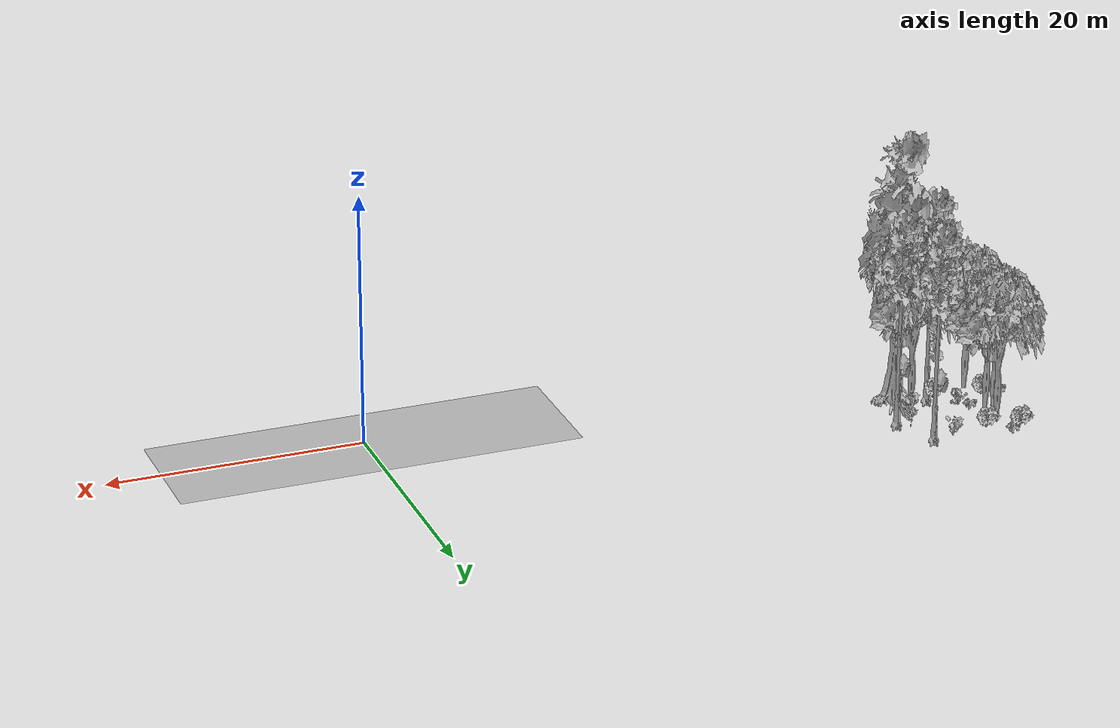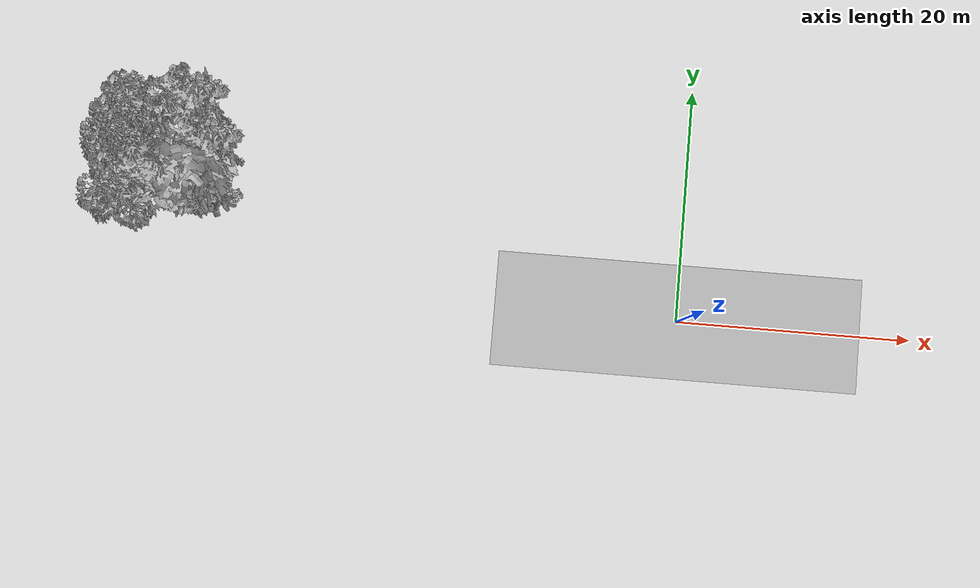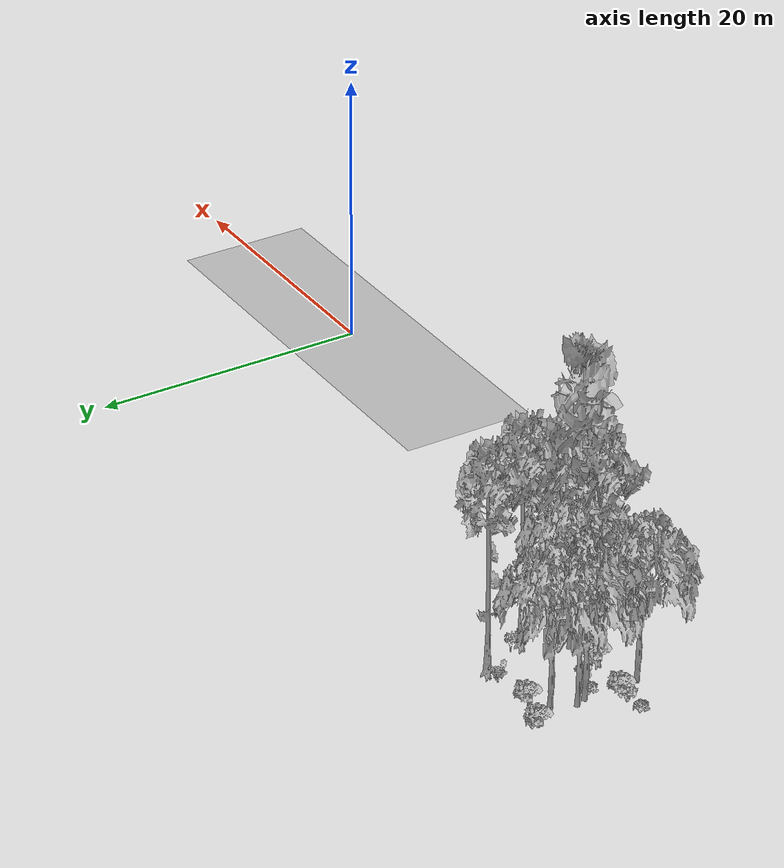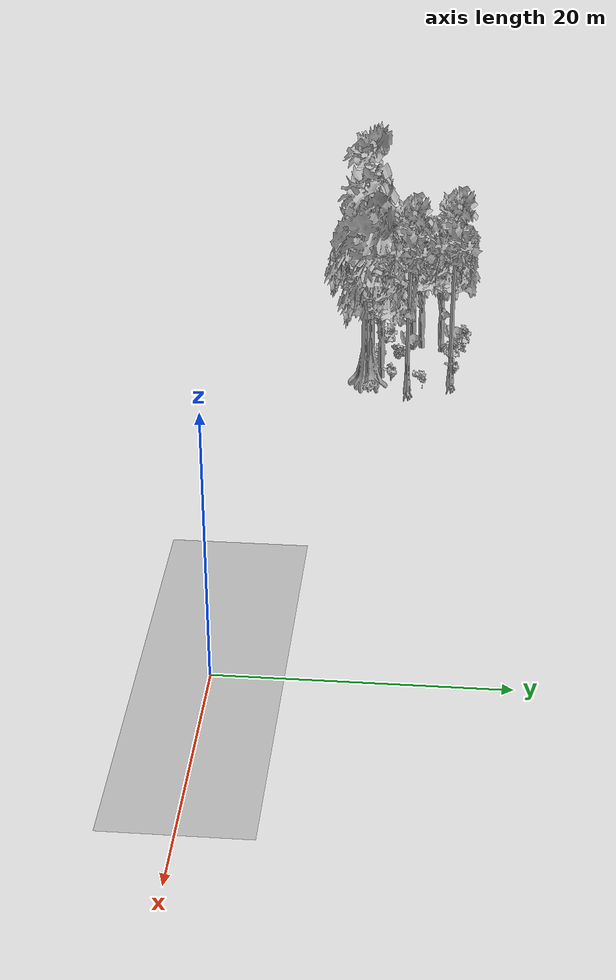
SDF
<sdf version="1.7">
 <world name="default">
  <model name="ground_plane">
   <static>1</static>
   <link name="link">
    <collision name="collision">
     <geometry><plane><normal>0 0 1</normal><size>100 100</size></plane></geometry>
     <surface><contact><ode><min_depth>0.01</min_depth><max_vel>0</max_vel></ode></contact></surface>
    </collision>
    <visual name="grass">
     <cast_shadows>0</cast_shadows>
     <geometry>
      <mesh>
       <scale>0.5814285714285714 0.18142857142857144 0.1</scale>
       <uri>file://grass_plane/meshes/grass_plane.dae</uri>
      </mesh>
     </geometry>
    </visual>
   </link>
  </model>
  <model name="Tree 52">
   <static>1</static>
   <pose>-46.08947265145504 13.245423968762662 0 1.57079 -0 0</pose>
   <link name="link">
    <collision name="collision">
     <geometry><mesh><scale>3.5 5 3.5</scale><uri>model://tree_2/meshes/tree_2.obj</uri></mesh></geometry>
    </collision>
    <visual name="visual">
     <geometry><mesh><scale>3.5 5 3.5</scale><uri>model://tree_2/meshes/tree_2.obj</uri></mesh></geometry>
    </visual>
   </link>
  </model>
  <model name="Tree 214">
   <static>1</static>
   <pose>-38.88065393081012 10.774691211876824 0 1.57079 -0 0</pose>
   <link name="link">
    <collision name="collision">
     <geometry><mesh><scale>3.5 5 3.5</scale><uri>model://tree_9/meshes/tree_9.obj</uri></mesh></geometry>
    </collision>
    <visual name="visual">
     <geometry><mesh><scale>3.5 5 3.5</scale><uri>model://tree_9/meshes/tree_9.obj</uri></mesh></geometry>
    </visual>
   </link>
  </model>
  <model name="Tree 234">
   <static>1</static>
   <pose>-46.62712365443124 11.564407777449041 0 1.57079 -0 0</pose>
   <link name="link">
    <collision name="collision">
     <geometry><mesh><scale>3.5 5 3.5</scale><uri>model://tree_2/meshes/tree_2.obj</uri></mesh></geometry>
    </collision>
    <visual name="visual">
     <geometry><mesh><scale>3.5 5 3.5</scale><uri>model://tree_2/meshes/tree_2.obj</uri></mesh></geometry>
    </visual>
   </link>
  </model>
  <model name="Tree 236">
   <static>1</static>
   <pose>-42.81697002062841 7.634112495179888 0 1.57079 -0 0</pose>
   <link name="link">
    <collision name="collision">
     <geometry><mesh><scale>3.5 5 3.5</scale><uri>model://tree_9/meshes/tree_9.obj</uri></mesh></geometry>
    </collision>
    <visual name="visual">
     <geometry><mesh><scale>3.5 5 3.5</scale><uri>model://tree_9/meshes/tree_9.obj</uri></mesh></geometry>
    </visual>
   </link>
  </model>
  <model name="Tree 310">
   <static>1</static>
   <pose>-40.192363926384175 7.449278251251609 0 1.57079 -0 0</pose>
   <link name="link">
    <collision name="collision">
     <geometry><mesh><scale>3.5 5 3.5</scale><uri>model://tree_4/meshes/tree_4.obj</uri></mesh></geometry>
    </collision>
    <visual name="visual">
     <geometry><mesh><scale>3.5 5 3.5</scale><uri>model://tree_4/meshes/tree_4.obj</uri></mesh></geometry>
    </visual>
   </link>
  </model>
  <model name="Tree 314">
   <static>1</static>
   <pose>-41.16809557386468 8.516258128596526 0 1.57079 -0 0</pose>
   <link name="link">
    <collision name="collision">
     <geometry><mesh><scale>3.5 5 3.5</scale><uri>model://tree_2/meshes/tree_2.obj</uri></mesh></geometry>
    </collision>
    <visual name="visual">
     <geometry><mesh><scale>3.5 5 3.5</scale><uri>model://tree_2/meshes/tree_2.obj</uri></mesh></geometry>
    </visual>
   </link>
  </model>
  <model name="Tree 325">
   <static>1</static>
   <pose>-46.37356224802871 6.976672934072884 0 1.57079 -0 0</pose>
   <link name="link">
    <collision name="collision">
     <geometry><mesh><scale>3.5 5 3.5</scale><uri>model://tree_2/meshes/tree_2.obj</uri></mesh></geometry>
    </collision>
    <visual name="visual">
     <geometry><mesh><scale>3.5 5 3.5</scale><uri>model://tree_2/meshes/tree_2.obj</uri></mesh></geometry>
    </visual>
   </link>
  </model>
  <model name="Tree 356">
   <static>1</static>
   <pose>-40.36227810251644 14.23106195304268 0 1.57079 -0 0</pose>
   <link name="link">
    <collision name="collision">
     <geometry><mesh><scale>3.5 5 3.5</scale><uri>model://tree_9/meshes/tree_9.obj</uri></mesh></geometry>
    </collision>
    <visual name="visual">
     <geometry><mesh><scale>3.5 5 3.5</scale><uri>model://tree_9/meshes/tree_9.obj</uri></mesh></geometry>
    </visual>
   </link>
  </model>
  <model name="Tree 390">
   <static>1</static>
   <pose>-46.32582929962931 10.836689802900423 0 1.57079 -0 0</pose>
   <link name="link">
    <collision name="collision">
     <geometry><mesh><scale>3.5 5 3.5</scale><uri>model://tree_2/meshes/tree_2.obj</uri></mesh></geometry>
    </collision>
    <visual name="visual">
     <geometry><mesh><scale>3.5 5 3.5</scale><uri>model://tree_2/meshes/tree_2.obj</uri></mesh></geometry>
    </visual>
   </link>
  </model>
  <model name="Bush 12">
   <static>1</static>
   <pose>-47.20260601626977 14.813986729203606 0 1.57079 -0 0</pose>
   <link name="link">
    <collision name="collision">
     <geometry><mesh><scale>2 2 2</scale><uri>model://bush_1/meshes/bush_1.obj</uri></mesh></geometry>
     <surface><contact><collide_without_contact>false</collide_without_contact></contact></surface>
    </collision>
    <visual name="visual">
     <geometry><mesh><scale>2 2 2</scale><uri>model://bush_1/meshes/bush_1.obj</uri></mesh></geometry>
    </visual>
   </link>
  </model>
  <model name="Bush 18">
   <static>1</static>
   <pose>-40.582393359893445 9.370725535602865 0 1.57079 -0 0</pose>
   <link name="link">
    <collision name="collision">
     <geometry><mesh><scale>2 2 2</scale><uri>model://bush_0/meshes/bush_0.obj</uri></mesh></geometry>
     <surface><contact><collide_without_contact>false</collide_without_contact></contact></surface>
    </collision>
    <visual name="visual">
     <geometry><mesh><scale>2 2 2</scale><uri>model://bush_0/meshes/bush_0.obj</uri></mesh></geometry>
    </visual>
   </link>
  </model>
  <model name="Bush 27">
   <static>1</static>
   <pose>-41.86894153987615 14.432781859617869 0 1.57079 -0 0</pose>
   <link name="link">
    <collision name="collision">
     <geometry><mesh><scale>2 2 2</scale><uri>model://bush_0/meshes/bush_0.obj</uri></mesh></geometry>
     <surface><contact><collide_without_contact>false</collide_without_contact></contact></surface>
    </collision>
    <visual name="visual">
     <geometry><mesh><scale>2 2 2</scale><uri>model://bush_0/meshes/bush_0.obj</uri></mesh></geometry>
    </visual>
   </link>
  </model>
  <model name="Bush 88">
   <static>1</static>
   <pose>-48.684814531987826 8.22994078586775 0 1.57079 -0 0</pose>
   <link name="link">
    <collision name="collision">
     <geometry><mesh><scale>2 2 2</scale><uri>model://bush_2/meshes/bush_2.obj</uri></mesh></geometry>
     <surface><contact><collide_without_contact>false</collide_without_contact></contact></surface>
    </collision>
    <visual name="visual">
     <geometry><mesh><scale>2 2 2</scale><uri>model://bush_2/meshes/bush_2.obj</uri></mesh></geometry>
    </visual>
   </link>
  </model>
  <model name="Bush 91">
   <static>1</static>
   <pose>-47.41237828912675 8.508440608296858 0 1.57079 -0 0</pose>
   <link name="link">
    <collision name="collision">
     <geometry><mesh><scale>2 2 2</scale><uri>model://bush_3/meshes/bush_3.obj</uri></mesh></geometry>
     <surface><contact><collide_without_contact>false</collide_without_contact></contact></surface>
    </collision>
    <visual name="visual">
     <geometry><mesh><scale>2 2 2</scale><uri>model://bush_3/meshes/bush_3.obj</uri></mesh></geometry>
    </visual>
   </link>
  </model>
  <model name="Bush 161">
   <static>1</static>
   <pose>-44.47345701296499 9.64326927719046 0 1.57079 -0 0</pose>
   <link name="link">
    <collision name="collision">
     <geometry><mesh><scale>2 2 2</scale><uri>model://bush_4/meshes/bush_4.obj</uri></mesh></geometry>
     <surface><contact><collide_without_contact>false</collide_without_contact></contact></surface>
    </collision>
    <visual name="visual">
     <geometry><mesh><scale>2 2 2</scale><uri>model://bush_4/meshes/bush_4.obj</uri></mesh></geometry>
    </visual>
   </link>
  </model>
  <model name="Bush 180">
   <static>1</static>
   <pose>-38.688231570563985 7.830733344312264 0 1.57079 -0 0</pose>
   <link name="link">
    <collision name="collision">
     <geometry><mesh><scale>2 2 2</scale><uri>model://bush_3/meshes/bush_3.obj</uri></mesh></geometry>
     <surface><contact><collide_without_contact>false</collide_without_contact></contact></surface>
    </collision>
    <visual name="visual">
     <geometry><mesh><scale>2 2 2</scale><uri>model://bush_3/meshes/bush_3.obj</uri></mesh></geometry>
    </visual>
   </link>
  </model>
  <model name="Bush 186">
   <static>1</static>
   <pose>-45.442926997721344 9.85452596528923 0 1.57079 -0 0</pose>
   <link name="link">
    <collision name="collision">
     <geometry><mesh><scale>2 2 2</scale><uri>model://bush_2/meshes/bush_2.obj</uri></mesh></geometry>
     <surface><contact><collide_without_contact>false</collide_without_contact></contact></surface>
    </collision>
    <visual name="visual">
     <geometry><mesh><scale>2 2 2</scale><uri>model://bush_2/meshes/bush_2.obj</uri></mesh></geometry>
    </visual>
   </link>
  </model>
  <model name="Bush 190">
   <static>1</static>
   <pose>-43.273316149634105 7.85262616846644 0 1.57079 -0 0</pose>
   <link name="link">
    <collision name="collision">
     <geometry><mesh><scale>2 2 2</scale><uri>model://bush_1/meshes/bush_1.obj</uri></mesh></geometry>
     <surface><contact><collide_without_contact>false</collide_without_contact></contact></surface>
    </collision>
    <visual name="visual">
     <geometry><mesh><scale>2 2 2</scale><uri>model://bush_1/meshes/bush_1.obj</uri></mesh></geometry>
    </visual>
   </link>
  </model>
  <model name="Bush 206">
   <static>1</static>
   <pose>-39.49612289573886 11.967299465455952 0 1.57079 -0 0</pose>
   <link name="link">
    <collision name="collision">
     <geometry><mesh><scale>2 2 2</scale><uri>model://bush_5/meshes/bush_5.obj</uri></mesh></geometry>
     <surface><contact><collide_without_contact>false</collide_without_contact></contact></surface>
    </collision>
    <visual name="visual">
     <geometry><mesh><scale>2 2 2</scale><uri>model://bush_5/meshes/bush_5.obj</uri></mesh></geometry>
    </visual>
   </link>
  </model>
  <model name="Bush 242">
   <static>1</static>
   <pose>-44.794836086399506 14.031285807226322 0 1.57079 -0 0</pose>
   <link name="link">
    <collision name="collision">
     <geometry><mesh><scale>2 2 2</scale><uri>model://bush_1/meshes/bush_1.obj</uri></mesh></geometry>
     <surface><contact><collide_without_contact>false</collide_without_contact></contact></surface>
    </collision>
    <visual name="visual">
     <geometry><mesh><scale>2 2 2</scale><uri>model://bush_1/meshes/bush_1.obj</uri></mesh></geometry>
    </visual>
   </link>
  </model>
  <model name="Bush 260">
   <static>1</static>
   <pose>-46.70068094582258 14.82326793163347 0 1.57079 -0 0</pose>
   <link name="link">
    <collision name="collision">
     <geometry><mesh><scale>2 2 2</scale><uri>model://bush_2/meshes/bush_2.obj</uri></mesh></geometry>
     <surface><contact><collide_without_contact>false</collide_without_contact></contact></surface>
    </collision>
    <visual name="visual">
     <geometry><mesh><scale>2 2 2</scale><uri>model://bush_2/meshes/bush_2.obj</uri></mesh></geometry>
    </visual>
   </link>
  </model>
  <model name="Bush 267">
   <static>1</static>
   <pose>-46.98904303356409 8.543485849323456 0 1.57079 -0 0</pose>
   <link name="link">
    <collision name="collision">
     <geometry><mesh><scale>2 2 2</scale><uri>model://bush_1/meshes/bush_1.obj</uri></mesh></geometry>
     <surface><contact><collide_without_contact>false</collide_without_contact></contact></surface>
    </collision>
    <visual name="visual">
     <geometry><mesh><scale>2 2 2</scale><uri>model://bush_1/meshes/bush_1.obj</uri></mesh></geometry>
    </visual>
   </link>
  </model>
 </world>
</sdf>
